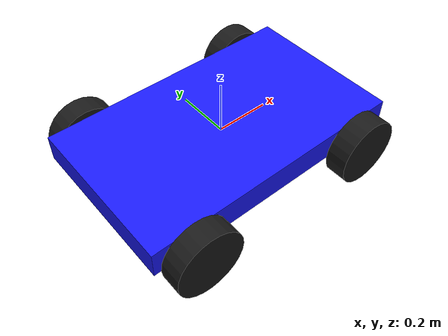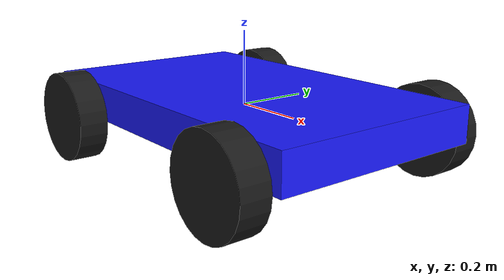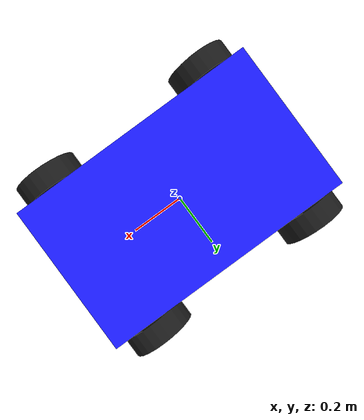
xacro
<?xml version="1.0"?>
<robot xmlns:xacro="http://wiki.ros.org/xacro" name="differential_robot">

  <link name="chassis_link">
    <visual>
      <geometry>
        <box size="1.0 0.6 0.1"/>
      </geometry>
      <origin xyz="0 0 0" rpy="0 0 0"/>
      <material name="blue">
        <color rgba="0.1 0.1 1.0 1.0"/>
      </material>
    </visual>
    <collision>
      <geometry>
        <box size="1.0 0.6 0.1"/>
      </geometry>
      <origin xyz="0 0 0" rpy="0 0 0"/>
    </collision>
    <inertial>
      <mass value="100.0"/>
      <inertia ixx="0.05" iyy="0.05" izz="0.08" ixy="0" ixz="0" iyz="0"/>
    </inertial>
  </link>

  <xacro:macro name="wheel" params="name x y radius width">
    <link name="${name}_link">
      <visual>
        <geometry>
          <cylinder length="${width}" radius="${radius}"/>
        </geometry>
        <origin xyz="0 0 0" rpy="1.5708 0 0"/>
        <material name="black">
          <color rgba="0.1 0.1 0.1 1.0"/>
        </material>
      </visual>
      <collision>
        <geometry>
          <cylinder length="${width}" radius="${radius}"/>
        </geometry>
        <origin xyz="0 0 0" rpy="1.5708 0 0"/>
      </collision>
      <inertial>
        <mass value="2.0"/>
        <inertia ixx="0.001" iyy="0.001" izz="0.001" ixy="0" ixz="0" iyz="0"/>
      </inertial>
    </link>

    <joint name="${name}_joint" type="continuous">
      <parent link="chassis_link"/>
      <child link="${name}_link"/>
      <origin xyz="${x} ${y} -0.05" rpy="0 0 0"/>
      <axis xyz="0 1 0"/>
    </joint>
  </xacro:macro>

  <xacro:wheel name="front_left_wheel"  x="0.35" y="0.34" radius="0.125" width="0.08"/>
  <xacro:wheel name="front_right_wheel" x="0.35" y="-0.34" radius="0.125" width="0.08"/>
  <xacro:wheel name="rear_left_wheel"   x="-0.35" y="0.34" radius="0.125" width="0.08"/>
  <xacro:wheel name="rear_right_wheel"  x="-0.35" y="-0.34" radius="0.125" width="0.08"/>

  <gazebo>
    <plugin filename="gz-sim-diff-drive-system" name="gz::sim::systems::DiffDrive">
      <left_joint>front_left_wheel_joint</left_joint>
      <left_joint>rear_left_wheel_joint</left_joint>
      <right_joint>front_right_wheel_joint</right_joint>
      <right_joint>rear_right_wheel_joint</right_joint>
      <topic>/cmd_vel</topic>
      <odometry_topic>/odom</odometry_topic>
      <wheel_separation>0.7</wheel_separation>
      <wheel_radius>0.125</wheel_radius>
      <publish_odom>true</publish_odom>
      <publish_tf>true</publish_tf>
    </plugin>

    <plugin filename="gz-sim-joint-state-publisher-system" name="gz::sim::systems::JointStatePublisher">
      <topic>joint_states</topic>
      <joint_name>front_left_wheel_joint</joint_name>
      <joint_name>rear_left_wheel_joint</joint_name>
      <joint_name>front_right_wheel_joint</joint_name>
      <joint_name>rear_right_wheel_joint</joint_name>
    </plugin>
  </gazebo>

</robot>
